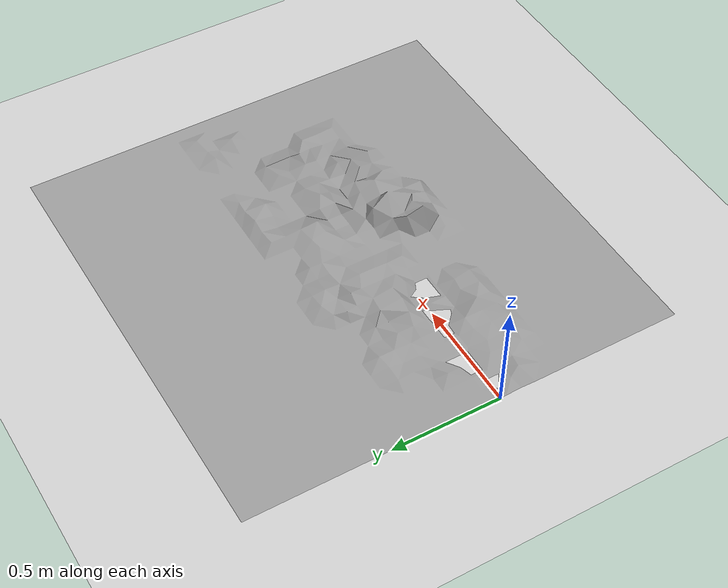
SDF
<sdf version="1.6">
 <world name="default">
  <model name="ground_plane">
   <static>1</static>
   <link name="link">
    <collision name="collision">
     <geometry><plane><normal>0 0 1</normal><size>100 100</size></plane></geometry>
     <surface><friction><ode><mu>100</mu><mu2>50</mu2></ode></friction></surface>
    </collision>
    <visual name="visual">
     <cast_shadows>0</cast_shadows>
     <geometry><plane><normal>0 0 1</normal><size>100 100</size></plane></geometry>
     <material>
      <script><uri>file://media/materials/scripts/gazebo.material</uri><name>Gazebo/Grey</name></script>
     </material>
    </visual>
   </link>
  </model>
  <model name="rockySurface">
   <link name="link_0">
    <inertial>
     <mass>1</mass>
     <inertia>
      <ixx>0.166667</ixx>
      <ixy>0</ixy>
      <ixz>0</ixz>
      <iyy>0.166667</iyy>
      <iyz>0</iyz>
      <izz>0.166667</izz>
     </inertia>
    </inertial>
    <visual name="visual">
     <geometry>
      <mesh><uri>model://rockySurface/meshes/rockySurfaceGood.dae</uri><scale>1 1 1</scale></mesh>
     </geometry>
     <material>
      <lighting>1</lighting>
      <script><uri>file://media/materials/scripts/gazebo.material</uri><name>Gazebo/Grey</name></script>
      <ambient>0.3 0.3 0.3 1</ambient>
      <diffuse>0.7 0.7 0.7 1</diffuse>
      <specular>0.01 0.01 0.01 1</specular>
      <emissive>0 0 0 1</emissive>
     </material>
    </visual>
    <collision name="collision">
     <geometry>
      <mesh><uri>model://rockySurface/meshes/rockySurfaceGood.dae</uri><scale>1 1 1</scale></mesh>
     </geometry>
     <surface>
      <friction>
       <ode><mu>1</mu><mu2>1</mu2><fdir1>0 0 0</fdir1><slip1>0</slip1><slip2>0</slip2></ode>
       <torsional>
        <coefficient>1</coefficient>
        <patch_radius>0</patch_radius>
        <surface_radius>0</surface_radius>
        <use_patch_radius>1</use_patch_radius>
        <ode><slip>0</slip></ode>
       </torsional>
      </friction>
      <bounce><restitution_coefficient>0</restitution_coefficient><threshold>1e+06</threshold></bounce>
      <contact>
       <collide_without_contact>0</collide_without_contact>
       <collide_without_contact_bitmask>1</collide_without_contact_bitmask>
       <collide_bitmask>1</collide_bitmask>
       <ode>
        <soft_cfm>0</soft_cfm>
        <soft_erp>0.2</soft_erp>
        <kp>1e+13</kp>
        <kd>1</kd>
        <max_vel>0.01</max_vel>
        <min_depth>0</min_depth>
       </ode>
       <bullet>
        <split_impulse>1</split_impulse>
        <split_impulse_penetration_threshold>-0.01</split_impulse_penetration_threshold>
        <soft_cfm>0</soft_cfm>
        <soft_erp>0.2</soft_erp>
        <kp>1e+13</kp>
        <kd>1</kd>
       </bullet>
      </contact>
     </surface>
    </collision>
   </link>
   <static>1</static>
   <pose>1.00133 0.142201 0 0 -0 0</pose>
  </model>
 </world>
</sdf>
